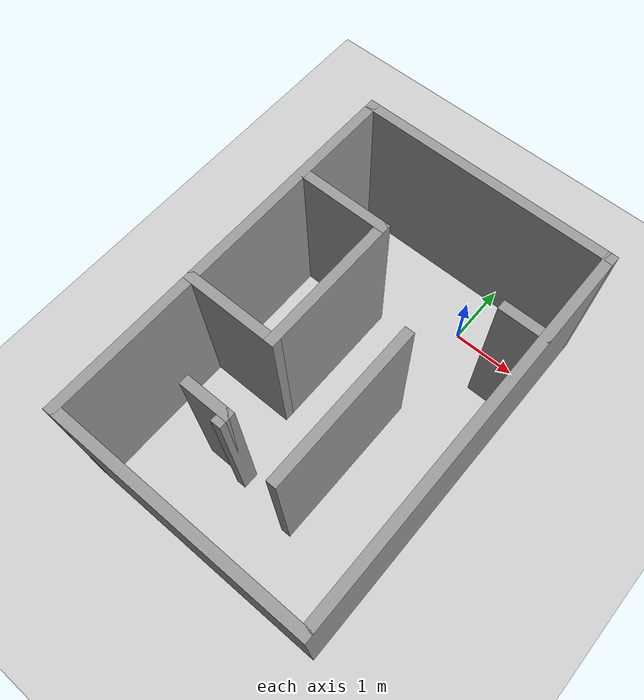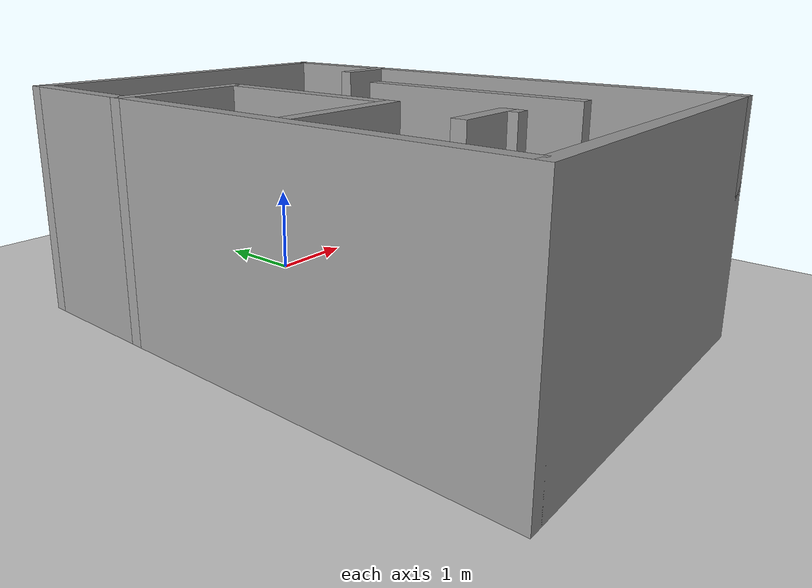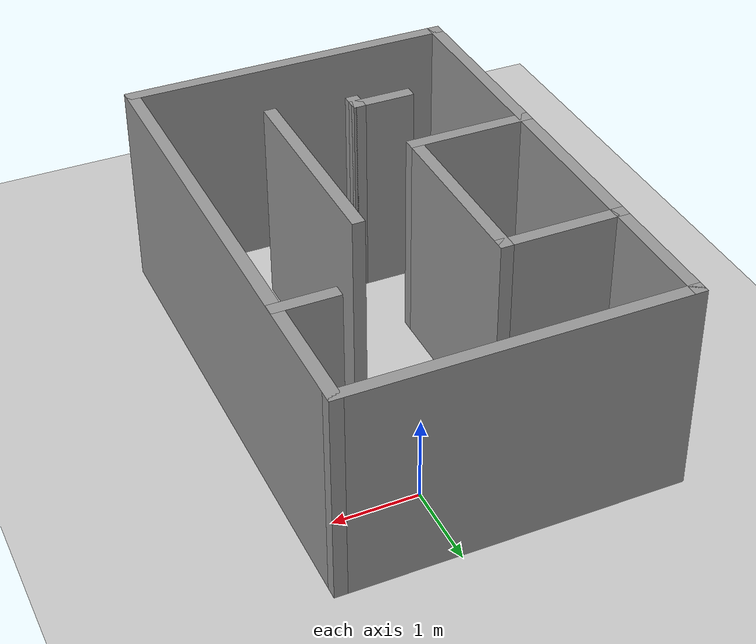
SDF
<sdf version="1.6">
 <world name="default">
  <light name="sun" type="directional">
   <pose>0 0 10 0 -0 0</pose>
   <diffuse>0.8 0.8 0.8 1</diffuse>
   <specular>0.2 0.2 0.2 1</specular>
   <attenuation>
    <range>1000</range>
    <constant>0.9</constant>
    <linear>0.01</linear>
    <quadratic>0.001</quadratic>
   </attenuation>
   <direction>-0.5 0.1 -0.9</direction>
  </light>
  <model name="ground_plane">
   <static>1</static>
   <link name="link">
    <collision name="collision">
     <geometry><plane><normal>0 0 1</normal><size>100 100</size></plane></geometry>
     <surface>
      <contact><collide_bitmask>65535</collide_bitmask></contact>
      <friction><ode><mu>100</mu><mu2>50</mu2></ode></friction>
     </surface>
    </collision>
    <visual name="visual">
     <cast_shadows>0</cast_shadows>
     <geometry><plane><normal>0 0 1</normal><size>100 100</size></plane></geometry>
     <material>
      <script><uri>file://media/materials/scripts/gazebo.material</uri><name>Gazebo/Grey</name></script>
     </material>
    </visual>
   </link>
  </model>
  <gravity>0 0 -9.8</gravity>
  <magnetic_field>6e-06 2.3e-05 -4.2e-05</magnetic_field>
  <atmosphere type="adiabatic"/>
  <physics name="default_physics" default="0" type="ode">
   <max_step_size>0.001</max_step_size>
   <real_time_factor>1</real_time_factor>
   <real_time_update_rate>1000</real_time_update_rate>
  </physics>
  <scene><ambient>0.4 0.4 0.4 1</ambient><background>0.7 0.7 0.7 1</background><shadows>1</shadows></scene>
  <audio><device>default</device></audio>
  <spherical_coordinates>
   <surface_model>EARTH_WGS84</surface_model>
   <latitude_deg>0</latitude_deg>
   <longitude_deg>0</longitude_deg>
   <elevation>0</elevation>
   <heading_deg>0</heading_deg>
  </spherical_coordinates>
  <model name="world3">
   <pose>-0.612794 -2.03168 0 0 -0 0</pose>
   <link name="Wall_10">
    <collision name="Wall_10_Collision">
     <geometry><box><size>1.5 0.15 2.5</size></box></geometry>
     <pose>0 0 1.25 0 -0 0</pose>
    </collision>
    <visual name="Wall_10_Visual">
     <pose>0 0 1.25 0 -0 0</pose>
     <geometry><box><size>1.5 0.15 2.5</size></box></geometry>
     <material>
      <script><uri>file://media/materials/scripts/gazebo.material</uri><name>Gazebo/Grey</name></script>
      <ambient>1 1 1 1</ambient>
     </material>
     <meta><layer>0</layer></meta>
    </visual>
    <pose>-1.25 -0.644165 0 0 -0 3.14159</pose>
   </link>
   <link name="Wall_12">
    <collision name="Wall_12_Collision">
     <geometry><box><size>2.5 0.15 2.5</size></box></geometry>
     <pose>0 0 1.25 0 -0 0</pose>
    </collision>
    <visual name="Wall_12_Visual">
     <pose>0 0 1.25 0 -0 0</pose>
     <geometry><box><size>2.5 0.15 2.5</size></box></geometry>
     <material>
      <script><uri>file://media/materials/scripts/gazebo.material</uri><name>Gazebo/Grey</name></script>
      <ambient>1 1 1 1</ambient>
     </material>
     <meta><layer>0</layer></meta>
    </visual>
    <pose>0.611059 -0.733589 0 0 -0 -1.5708</pose>
   </link>
   <link name="Wall_15">
    <collision name="Wall_15_Collision">
     <geometry><box><size>0.75 0.15 2.5</size></box></geometry>
     <pose>0 0 1.25 0 -0 0</pose>
    </collision>
    <visual name="Wall_15_Visual">
     <pose>0 0 1.25 0 -0 0</pose>
     <geometry><box><size>0.75 0.15 2.5</size></box></geometry>
     <material>
      <script><uri>file://media/materials/scripts/gazebo.material</uri><name>Gazebo/Grey</name></script>
      <ambient>1 1 1 1</ambient>
     </material>
     <meta><layer>0</layer></meta>
    </visual>
    <pose>-0.645557 -1.69238 0 0 -0 0</pose>
   </link>
   <link name="Wall_16">
    <collision name="Wall_16_Collision">
     <geometry><box><size>0.25 0.15 2.5</size></box></geometry>
     <pose>0 0 1.25 0 -0 0</pose>
    </collision>
    <visual name="Wall_16_Visual">
     <pose>0 0 1.25 0 -0 0</pose>
     <geometry><box><size>0.25 0.15 2.5</size></box></geometry>
     <material>
      <script><uri>file://media/materials/scripts/gazebo.material</uri><name>Gazebo/Grey</name></script>
      <ambient>1 1 1 1</ambient>
     </material>
     <meta><layer>0</layer></meta>
    </visual>
    <pose>-0.345557 -1.74238 0 0 -0 -1.5708</pose>
   </link>
   <link name="Wall_18">
    <collision name="Wall_18_Collision">
     <geometry><box><size>0.75 0.15 2.5</size></box></geometry>
     <pose>0 0 1.25 0 -0 0</pose>
    </collision>
    <visual name="Wall_18_Visual">
     <pose>0 0 1.25 0 -0 0</pose>
     <geometry><box><size>0.75 0.15 2.5</size></box></geometry>
     <material>
      <script><uri>file://media/materials/scripts/gazebo.material</uri><name>Gazebo/Grey</name></script>
      <ambient>1 1 1 1</ambient>
     </material>
     <meta><layer>0</layer></meta>
    </visual>
    <pose>1.62281 1.50831 0 0 -0 3.14159</pose>
   </link>
   <link name="Wall_3">
    <collision name="Wall_3_Collision">
     <geometry><box><size>6 0.15 2.5</size></box></geometry>
     <pose>0 0 1.25 0 -0 0</pose>
    </collision>
    <visual name="Wall_3_Visual">
     <pose>0 0 1.25 0 -0 0</pose>
     <geometry><box><size>6 0.15 2.5</size></box></geometry>
     <material>
      <script><uri>file://media/materials/scripts/gazebo.material</uri><name>Gazebo/Grey</name></script>
      <ambient>1 1 1 1</ambient>
     </material>
     <meta><layer>0</layer></meta>
    </visual>
    <pose>-1.925 0 0 0 -0 -1.5708</pose>
   </link>
   <link name="Wall_4">
    <collision name="Wall_4_Collision">
     <geometry><box><size>4 0.15 2.5</size></box></geometry>
     <pose>0 0 1.25 0 -0 0</pose>
    </collision>
    <visual name="Wall_4_Visual">
     <pose>0 0 1.25 0 -0 0</pose>
     <geometry><box><size>4 0.15 2.5</size></box></geometry>
     <material>
      <script><uri>file://media/materials/scripts/gazebo.material</uri><name>Gazebo/Grey</name></script>
      <ambient>1 1 1 1</ambient>
     </material>
     <meta><layer>0</layer></meta>
    </visual>
    <pose>-0 -2.925 0 0 -0 0</pose>
   </link>
   <link name="Wall_5">
    <collision name="Wall_5_Collision">
     <geometry><box><size>6 0.15 2.5</size></box></geometry>
     <pose>0 0 1.25 0 -0 0</pose>
    </collision>
    <visual name="Wall_5_Visual">
     <pose>0 0 1.25 0 -0 0</pose>
     <geometry><box><size>6 0.15 2.5</size></box></geometry>
     <material>
      <script><uri>file://media/materials/scripts/gazebo.material</uri><name>Gazebo/Grey</name></script>
      <ambient>1 1 1 1</ambient>
     </material>
     <meta><layer>0</layer></meta>
    </visual>
    <pose>1.925 0 0 0 -0 1.5708</pose>
   </link>
   <link name="Wall_6">
    <collision name="Wall_6_Collision">
     <geometry><box><size>4 0.15 2.5</size></box></geometry>
     <pose>0 0 1.25 0 -0 0</pose>
    </collision>
    <visual name="Wall_6_Visual">
     <pose>0 0 1.25 0 -0 0</pose>
     <geometry><box><size>4 0.15 2.5</size></box></geometry>
     <material>
      <script><uri>file://media/materials/scripts/gazebo.material</uri><name>Gazebo/Grey</name></script>
      <ambient>1 1 1 1</ambient>
     </material>
     <meta><layer>0</layer></meta>
    </visual>
    <pose>-0 2.925 0 0 -0 3.14159</pose>
   </link>
   <link name="Wall_8">
    <collision name="Wall_8_Collision">
     <geometry><box><size>1.5 0.15 2.5</size></box></geometry>
     <pose>0 0 1.25 0 -0 0</pose>
    </collision>
    <visual name="Wall_8_Visual">
     <pose>0 0 1.25 0 -0 0</pose>
     <geometry><box><size>1.5 0.15 2.5</size></box></geometry>
     <material>
      <script><uri>file://media/materials/scripts/gazebo.material</uri><name>Gazebo/Grey</name></script>
      <ambient>1 1 1 1</ambient>
     </material>
     <meta><layer>0</layer></meta>
    </visual>
    <pose>-1.25 1.45583 0 0 -0 0</pose>
   </link>
   <link name="Wall_9">
    <collision name="Wall_9_Collision">
     <geometry><box><size>2.25 0.15 2.5</size></box></geometry>
     <pose>0 0 1.25 0 -0 0</pose>
    </collision>
    <visual name="Wall_9_Visual">
     <pose>0 0 1.25 0 -0 0</pose>
     <geometry><box><size>2.25 0.15 2.5</size></box></geometry>
     <material>
      <script><uri>file://media/materials/scripts/gazebo.material</uri><name>Gazebo/Grey</name></script>
      <ambient>1 1 1 1</ambient>
     </material>
     <meta><layer>0</layer></meta>
    </visual>
    <pose>-0.575 0.405835 0 0 -0 -1.5708</pose>
   </link>
   <static>1</static>
  </model>
 </world>
</sdf>
